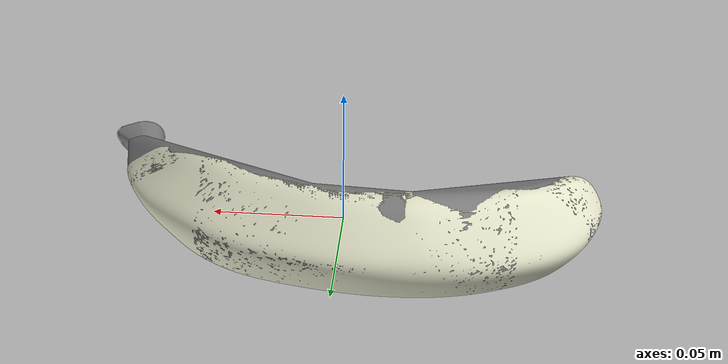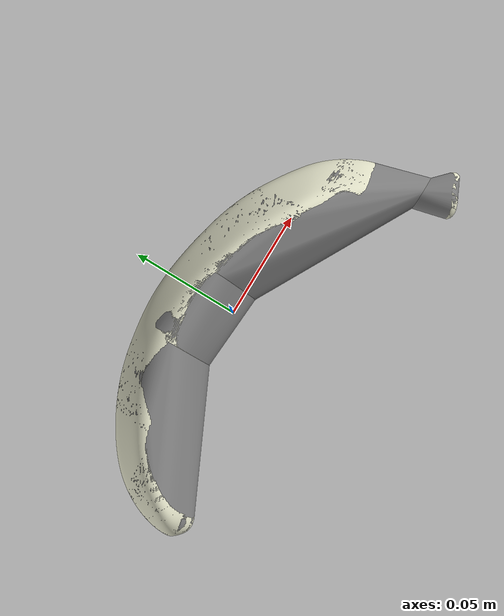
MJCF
<mujoco model="banana">
  <compiler meshdir="."/>

  <asset>
    <mesh name="banana" file="banana.stl"/>
    <mesh name="banana_collision_hull_000" file="banana_collision_hull_000.stl"/>
    <mesh name="banana_collision_hull_001" file="banana_collision_hull_001.stl"/>
    <mesh name="banana_collision_hull_002" file="banana_collision_hull_002.stl"/>
    <mesh name="banana_collision_hull_003" file="banana_collision_hull_003.stl"/>
  </asset>

  <worldbody>
    <body name="object">
      <freejoint name="object_joint"/>
      <geom name="object_visual" type="mesh" mesh="banana"
            contype="0" conaffinity="0" group="2" rgba="0.9 0.9 0.8 1" mass="0"/>
      <geom name="banana_collision_hull_000_collision" type="mesh" mesh="banana_collision_hull_000"
            mass="0.0125" condim="6" friction="1.0 0.002 0.002" priority="1"/>
      <geom name="banana_collision_hull_001_collision" type="mesh" mesh="banana_collision_hull_001"
            mass="0.0125" condim="6" friction="1.0 0.002 0.002" priority="1"/>
      <geom name="banana_collision_hull_002_collision" type="mesh" mesh="banana_collision_hull_002"
            mass="0.0125" condim="6" friction="1.0 0.002 0.002" priority="1"/>
      <geom name="banana_collision_hull_003_collision" type="mesh" mesh="banana_collision_hull_003"
            mass="0.0125" condim="6" friction="1.0 0.002 0.002" priority="1"/>
    </body>
  </worldbody>
</mujoco>
